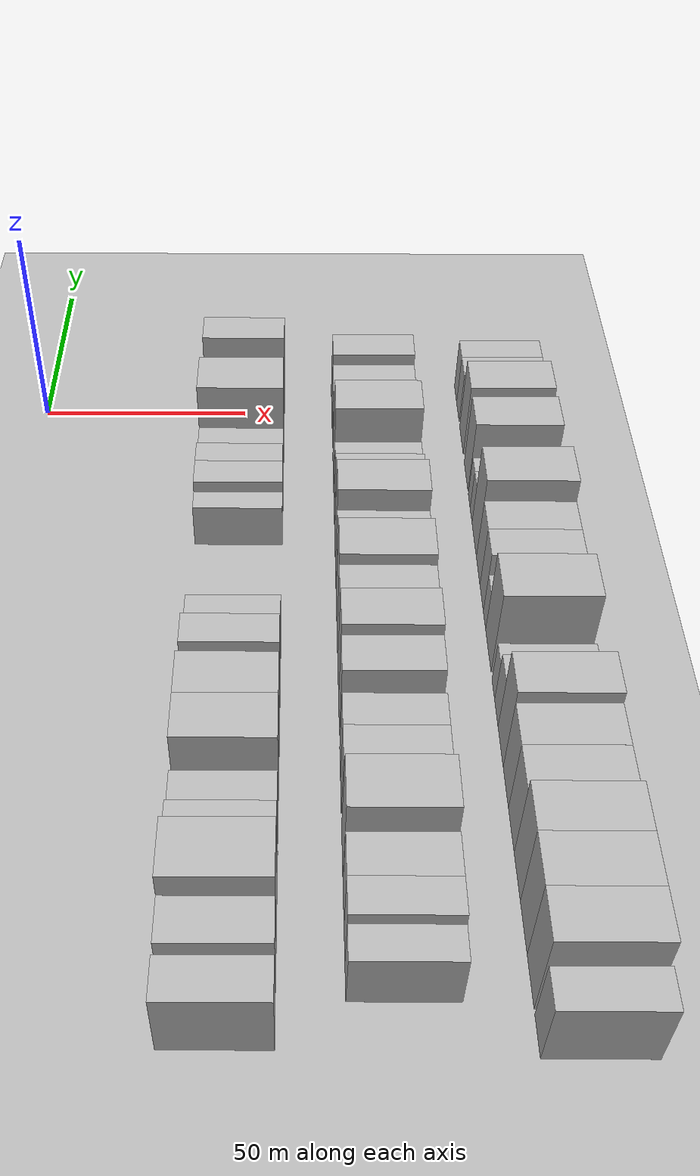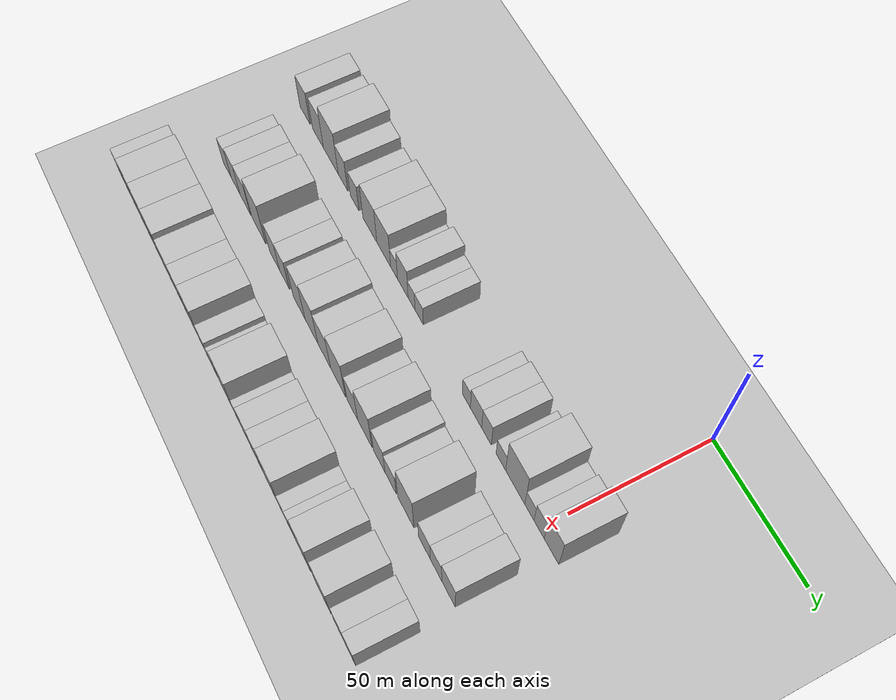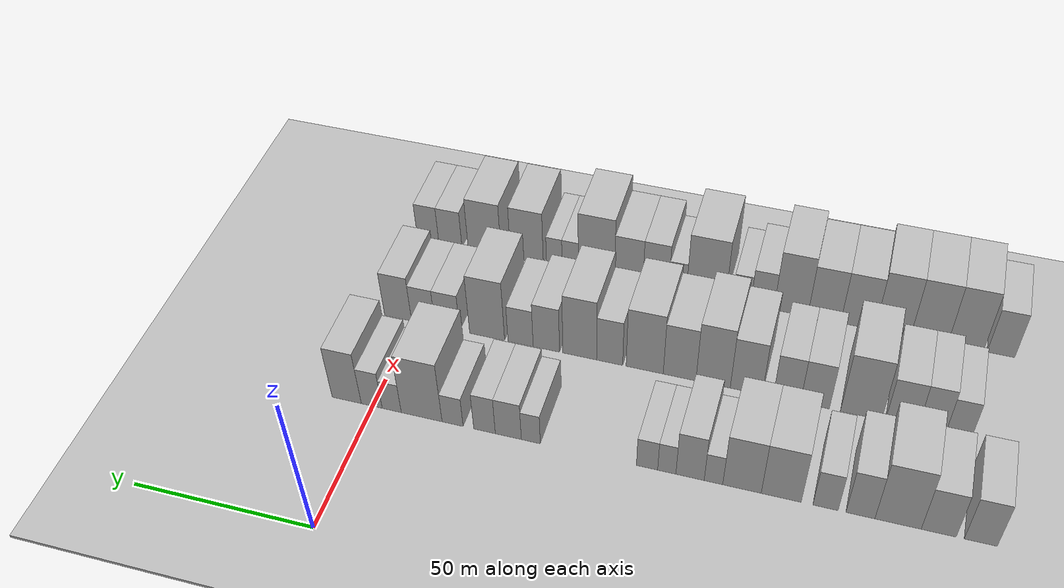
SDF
<sdf version="1.6">
 <world name="default">
  <include><name>ground_plane_1</name><uri>model://HANNAS_ground_plane</uri></include>
  <include>
   <name>ground_plane_2</name>
   <uri>model://HANNAS_ground_plane</uri>
   <pose>100 0 0  0 0 0</pose>
  </include>
  <model name="building_20">
   <static>1</static>
   <pose>50.0000 -162.3032 0 0.000000 0.000000 0.000000</pose>
   <link name="link">
    <pose>0 0 9.00 0 0 0</pose>
    <collision name="collision"><geometry><box><size>20.0000 8.0733 18.0000</size></box></geometry></collision>
    <visual name="visual">
     <cast_shadows>0</cast_shadows>
     <geometry><box><size>20.0000 8.0733 18.0000</size></box></geometry>
     <material>
      <script>
       <uri>model://HANNAS_wall/materials/scripts</uri>
       <uri>model://HANNAS_wall/materials/textures</uri>
       <name>vrc/HANNAS_wall</name>
      </script>
     </material>
    </visual>
   </link>
  </model>
  <model name="building_21">
   <static>1</static>
   <pose>50.0000 -151.9376 0 0.000000 0.000000 0.000000</pose>
   <link name="link">
    <pose>0 0 9.00 0 0 0</pose>
    <collision name="collision"><geometry><box><size>20.0000 8.6579 18.0000</size></box></geometry></collision>
    <visual name="visual">
     <cast_shadows>0</cast_shadows>
     <geometry><box><size>20.0000 8.6579 18.0000</size></box></geometry>
     <material>
      <script>
       <uri>model://HANNAS_wall/materials/scripts</uri>
       <uri>model://HANNAS_wall/materials/textures</uri>
       <name>vrc/HANNAS_wall</name>
      </script>
     </material>
    </visual>
   </link>
  </model>
  <model name="building_22">
   <static>1</static>
   <pose>50.0000 -141.8057 0 0.000000 0.000000 0.000000</pose>
   <link name="link">
    <pose>0 0 12.00 0 0 0</pose>
    <collision name="collision"><geometry><box><size>20.0000 11.6058 24.0000</size></box></geometry></collision>
    <visual name="visual">
     <cast_shadows>0</cast_shadows>
     <geometry><box><size>20.0000 11.6058 24.0000</size></box></geometry>
     <material>
      <script>
       <uri>model://HANNAS_wall/materials/scripts</uri>
       <uri>model://HANNAS_wall/materials/textures</uri>
       <name>vrc/HANNAS_wall</name>
      </script>
     </material>
    </visual>
   </link>
  </model>
  <model name="building_23">
   <static>1</static>
   <pose>50.0000 -132.3455 0 0.000000 0.000000 0.000000</pose>
   <link name="link">
    <pose>0 0 9.00 0 0 0</pose>
    <collision name="collision"><geometry><box><size>20.0000 7.3147 18.0000</size></box></geometry></collision>
    <visual name="visual">
     <cast_shadows>0</cast_shadows>
     <geometry><box><size>20.0000 7.3147 18.0000</size></box></geometry>
     <material>
      <script>
       <uri>model://HANNAS_wall/materials/scripts</uri>
       <uri>model://HANNAS_wall/materials/textures</uri>
       <name>vrc/HANNAS_wall</name>
      </script>
     </material>
    </visual>
   </link>
  </model>
  <model name="building_24">
   <static>1</static>
   <pose>50.0000 -123.4664 0 0.000000 0.000000 0.000000</pose>
   <link name="link">
    <pose>0 0 7.50 0 0 0</pose>
    <collision name="collision"><geometry><box><size>20.0000 6.4434 15.0000</size></box></geometry></collision>
    <visual name="visual">
     <cast_shadows>0</cast_shadows>
     <geometry><box><size>20.0000 6.4434 15.0000</size></box></geometry>
     <material>
      <script>
       <uri>model://HANNAS_wall/materials/scripts</uri>
       <uri>model://HANNAS_wall/materials/textures</uri>
       <name>vrc/HANNAS_wall</name>
      </script>
     </material>
    </visual>
   </link>
  </model>
  <model name="building_25">
   <static>1</static>
   <pose>50.0000 -112.0705 0 0.000000 0.000000 0.000000</pose>
   <link name="link">
    <pose>0 0 10.50 0 0 0</pose>
    <collision name="collision"><geometry><box><size>20.0000 10.3483 21.0000</size></box></geometry></collision>
    <visual name="visual">
     <cast_shadows>0</cast_shadows>
     <geometry><box><size>20.0000 10.3483 21.0000</size></box></geometry>
     <material>
      <script>
       <uri>model://HANNAS_wall/materials/scripts</uri>
       <uri>model://HANNAS_wall/materials/textures</uri>
       <name>vrc/HANNAS_wall</name>
      </script>
     </material>
    </visual>
   </link>
  </model>
  <model name="building_26">
   <static>1</static>
   <pose>50.0000 -101.8684 0 0.000000 0.000000 0.000000</pose>
   <link name="link">
    <pose>0 0 10.50 0 0 0</pose>
    <collision name="collision"><geometry><box><size>20.0000 10.0559 21.0000</size></box></geometry></collision>
    <visual name="visual">
     <cast_shadows>0</cast_shadows>
     <geometry><box><size>20.0000 10.0559 21.0000</size></box></geometry>
     <material>
      <script>
       <uri>model://HANNAS_wall/materials/scripts</uri>
       <uri>model://HANNAS_wall/materials/textures</uri>
       <name>vrc/HANNAS_wall</name>
      </script>
     </material>
    </visual>
   </link>
  </model>
  <model name="building_27">
   <static>1</static>
   <pose>50.0000 -94.3992 0 0.000000 0.000000 0.000000</pose>
   <link name="link">
    <pose>0 0 6.00 0 0 0</pose>
    <collision name="collision"><geometry><box><size>20.0000 4.8827 12.0000</size></box></geometry></collision>
    <visual name="visual">
     <cast_shadows>0</cast_shadows>
     <geometry><box><size>20.0000 4.8827 12.0000</size></box></geometry>
     <material>
      <script>
       <uri>model://HANNAS_wall/materials/scripts</uri>
       <uri>model://HANNAS_wall/materials/textures</uri>
       <name>vrc/HANNAS_wall</name>
      </script>
     </material>
    </visual>
   </link>
  </model>
  <model name="building_28">
   <static>1</static>
   <pose>50.0000 -88.1962 0 0.000000 0.000000 0.000000</pose>
   <link name="link">
    <pose>0 0 9.00 0 0 0</pose>
    <collision name="collision"><geometry><box><size>20.0000 7.5232 18.0000</size></box></geometry></collision>
    <visual name="visual">
     <cast_shadows>0</cast_shadows>
     <geometry><box><size>20.0000 7.5232 18.0000</size></box></geometry>
     <material>
      <script>
       <uri>model://HANNAS_wall/materials/scripts</uri>
       <uri>model://HANNAS_wall/materials/textures</uri>
       <name>vrc/HANNAS_wall</name>
      </script>
     </material>
    </visual>
   </link>
  </model>
  <model name="building_29">
   <static>1</static>
   <pose>50.0000 -82.0063 0 0.000000 0.000000 0.000000</pose>
   <link name="link">
    <pose>0 0 6.00 0 0 0</pose>
    <collision name="collision"><geometry><box><size>20.0000 4.8566 12.0000</size></box></geometry></collision>
    <visual name="visual">
     <cast_shadows>0</cast_shadows>
     <geometry><box><size>20.0000 4.8566 12.0000</size></box></geometry>
     <material>
      <script>
       <uri>model://HANNAS_wall/materials/scripts</uri>
       <uri>model://HANNAS_wall/materials/textures</uri>
       <name>vrc/HANNAS_wall</name>
      </script>
     </material>
    </visual>
   </link>
  </model>
  <model name="building_30">
   <static>1</static>
   <pose>50.0000 -76.7317 0 0.000000 0.000000 0.000000</pose>
   <link name="link">
    <pose>0 0 6.00 0 0 0</pose>
    <collision name="collision"><geometry><box><size>20.0000 5.6926 12.0000</size></box></geometry></collision>
    <visual name="visual">
     <cast_shadows>0</cast_shadows>
     <geometry><box><size>20.0000 5.6926 12.0000</size></box></geometry>
     <material>
      <script>
       <uri>model://HANNAS_wall/materials/scripts</uri>
       <uri>model://HANNAS_wall/materials/textures</uri>
       <name>vrc/HANNAS_wall</name>
      </script>
     </material>
    </visual>
   </link>
  </model>
  <model name="building_31">
   <static>1</static>
   <pose>50.0000 -44.9944 0 0.000000 0.000000 0.000000</pose>
   <link name="link">
    <pose>0 0 6.00 0 0 0</pose>
    <collision name="collision"><geometry><box><size>20.0000 5.2606 12.0000</size></box></geometry></collision>
    <visual name="visual">
     <cast_shadows>0</cast_shadows>
     <geometry><box><size>20.0000 5.2606 12.0000</size></box></geometry>
     <material>
      <script>
       <uri>model://HANNAS_wall/materials/scripts</uri>
       <uri>model://HANNAS_wall/materials/textures</uri>
       <name>vrc/HANNAS_wall</name>
      </script>
     </material>
    </visual>
   </link>
  </model>
  <model name="building_32">
   <static>1</static>
   <pose>50.0000 -38.7265 0 0.000000 0.000000 0.000000</pose>
   <link name="link">
    <pose>0 0 7.50 0 0 0</pose>
    <collision name="collision"><geometry><box><size>20.0000 7.2752 15.0000</size></box></geometry></collision>
    <visual name="visual">
     <cast_shadows>0</cast_shadows>
     <geometry><box><size>20.0000 7.2752 15.0000</size></box></geometry>
     <material>
      <script>
       <uri>model://HANNAS_wall/materials/scripts</uri>
       <uri>model://HANNAS_wall/materials/textures</uri>
       <name>vrc/HANNAS_wall</name>
      </script>
     </material>
    </visual>
   </link>
  </model>
  <model name="building_33">
   <static>1</static>
   <pose>50.0000 -32.0536 0 0.000000 0.000000 0.000000</pose>
   <link name="link">
    <pose>0 0 7.50 0 0 0</pose>
    <collision name="collision"><geometry><box><size>20.0000 6.0708 15.0000</size></box></geometry></collision>
    <visual name="visual">
     <cast_shadows>0</cast_shadows>
     <geometry><box><size>20.0000 6.0708 15.0000</size></box></geometry>
     <material>
      <script>
       <uri>model://HANNAS_wall/materials/scripts</uri>
       <uri>model://HANNAS_wall/materials/textures</uri>
       <name>vrc/HANNAS_wall</name>
      </script>
     </material>
    </visual>
   </link>
  </model>
  <model name="building_34">
   <static>1</static>
   <pose>50.0000 -23.0330 0 0.000000 0.000000 0.000000</pose>
   <link name="link">
    <pose>0 0 6.00 0 0 0</pose>
    <collision name="collision"><geometry><box><size>20.0000 5.9702 12.0000</size></box></geometry></collision>
    <visual name="visual">
     <cast_shadows>0</cast_shadows>
     <geometry><box><size>20.0000 5.9702 12.0000</size></box></geometry>
     <material>
      <script>
       <uri>model://HANNAS_wall/materials/scripts</uri>
       <uri>model://HANNAS_wall/materials/textures</uri>
       <name>vrc/HANNAS_wall</name>
      </script>
     </material>
    </visual>
   </link>
  </model>
  <model name="building_35">
   <static>1</static>
   <pose>50.0000 -14.2006 0 0.000000 0.000000 0.000000</pose>
   <link name="link">
    <pose>0 0 12.00 0 0 0</pose>
    <collision name="collision"><geometry><box><size>20.0000 11.6945 24.0000</size></box></geometry></collision>
    <visual name="visual">
     <cast_shadows>0</cast_shadows>
     <geometry><box><size>20.0000 11.6945 24.0000</size></box></geometry>
     <material>
      <script>
       <uri>model://HANNAS_wall/materials/scripts</uri>
       <uri>model://HANNAS_wall/materials/textures</uri>
       <name>vrc/HANNAS_wall</name>
      </script>
     </material>
    </visual>
   </link>
  </model>
  <model name="building_36">
   <static>1</static>
   <pose>50.0000 -5.5982 0 0.000000 0.000000 0.000000</pose>
   <link name="link">
    <pose>0 0 6.00 0 0 0</pose>
    <collision name="collision"><geometry><box><size>20.0000 5.5104 12.0000</size></box></geometry></collision>
    <visual name="visual">
     <cast_shadows>0</cast_shadows>
     <geometry><box><size>20.0000 5.5104 12.0000</size></box></geometry>
     <material>
      <script>
       <uri>model://HANNAS_wall/materials/scripts</uri>
       <uri>model://HANNAS_wall/materials/textures</uri>
       <name>vrc/HANNAS_wall</name>
      </script>
     </material>
    </visual>
   </link>
  </model>
  <model name="building_37">
   <static>1</static>
   <pose>50.0000 0.1944 0 0.000000 0.000000 0.000000</pose>
   <link name="link">
    <pose>0 0 7.50 0 0 0</pose>
    <collision name="collision"><geometry><box><size>20.0000 6.0749 15.0000</size></box></geometry></collision>
    <visual name="visual">
     <cast_shadows>0</cast_shadows>
     <geometry><box><size>20.0000 6.0749 15.0000</size></box></geometry>
     <material>
      <script>
       <uri>model://HANNAS_wall/materials/scripts</uri>
       <uri>model://HANNAS_wall/materials/textures</uri>
       <name>vrc/HANNAS_wall</name>
      </script>
     </material>
    </visual>
   </link>
  </model>
  <model name="building_38">
   <static>1</static>
   <pose>50.0000 7.5005 0 0.000000 0.000000 0.000000</pose>
   <link name="link">
    <pose>0 0 10.50 0 0 0</pose>
    <collision name="collision"><geometry><box><size>20.0000 8.5372 21.0000</size></box></geometry></collision>
    <visual name="visual">
     <cast_shadows>0</cast_shadows>
     <geometry><box><size>20.0000 8.5372 21.0000</size></box></geometry>
     <material>
      <script>
       <uri>model://HANNAS_wall/materials/scripts</uri>
       <uri>model://HANNAS_wall/materials/textures</uri>
       <name>vrc/HANNAS_wall</name>
      </script>
     </material>
    </visual>
   </link>
  </model>
  <model name="building_93">
   <static>1</static>
   <pose>82.0000 -154.3610 0 0.000000 0.000000 0.000000</pose>
   <link name="link">
    <pose>0 0 7.50 0 0 0</pose>
    <collision name="collision"><geometry><box><size>20.0000 6.7624 15.0000</size></box></geometry></collision>
    <visual name="visual">
     <cast_shadows>0</cast_shadows>
     <geometry><box><size>20.0000 6.7624 15.0000</size></box></geometry>
     <material>
      <script>
       <uri>model://HANNAS_wall/materials/scripts</uri>
       <uri>model://HANNAS_wall/materials/textures</uri>
       <name>vrc/HANNAS_wall</name>
      </script>
     </material>
    </visual>
   </link>
  </model>
  <model name="building_94">
   <static>1</static>
   <pose>82.0000 -147.3197 0 0.000000 0.000000 0.000000</pose>
   <link name="link">
    <pose>0 0 9.00 0 0 0</pose>
    <collision name="collision"><geometry><box><size>20.0000 7.3201 18.0000</size></box></geometry></collision>
    <visual name="visual">
     <cast_shadows>0</cast_shadows>
     <geometry><box><size>20.0000 7.3201 18.0000</size></box></geometry>
     <material>
      <script>
       <uri>model://HANNAS_wall/materials/scripts</uri>
       <uri>model://HANNAS_wall/materials/textures</uri>
       <name>vrc/HANNAS_wall</name>
      </script>
     </material>
    </visual>
   </link>
  </model>
  <model name="building_95">
   <static>1</static>
   <pose>82.0000 -139.3300 0 0.000000 0.000000 0.000000</pose>
   <link name="link">
    <pose>0 0 9.00 0 0 0</pose>
    <collision name="collision"><geometry><box><size>20.0000 8.6593 18.0000</size></box></geometry></collision>
    <visual name="visual">
     <cast_shadows>0</cast_shadows>
     <geometry><box><size>20.0000 8.6593 18.0000</size></box></geometry>
     <material>
      <script>
       <uri>model://HANNAS_wall/materials/scripts</uri>
       <uri>model://HANNAS_wall/materials/textures</uri>
       <name>vrc/HANNAS_wall</name>
      </script>
     </material>
    </visual>
   </link>
  </model>
  <model name="building_96">
   <static>1</static>
   <pose>82.0000 -128.4427 0 0.000000 0.000000 0.000000</pose>
   <link name="link">
    <pose>0 0 12.00 0 0 0</pose>
    <collision name="collision"><geometry><box><size>20.0000 11.1153 24.0000</size></box></geometry></collision>
    <visual name="visual">
     <cast_shadows>0</cast_shadows>
     <geometry><box><size>20.0000 11.1153 24.0000</size></box></geometry>
     <material>
      <script>
       <uri>model://HANNAS_wall/materials/scripts</uri>
       <uri>model://HANNAS_wall/materials/textures</uri>
       <name>vrc/HANNAS_wall</name>
      </script>
     </material>
    </visual>
   </link>
  </model>
  <model name="building_97">
   <static>1</static>
   <pose>82.0000 -115.9267 0 0.000000 0.000000 0.000000</pose>
   <link name="link">
    <pose>0 0 9.00 0 0 0</pose>
    <collision name="collision"><geometry><box><size>20.0000 7.9168 18.0000</size></box></geometry></collision>
    <visual name="visual">
     <cast_shadows>0</cast_shadows>
     <geometry><box><size>20.0000 7.9168 18.0000</size></box></geometry>
     <material>
      <script>
       <uri>model://HANNAS_wall/materials/scripts</uri>
       <uri>model://HANNAS_wall/materials/textures</uri>
       <name>vrc/HANNAS_wall</name>
      </script>
     </material>
    </visual>
   </link>
  </model>
  <model name="building_98">
   <static>1</static>
   <pose>82.0000 -108.2149 0 0.000000 0.000000 0.000000</pose>
   <link name="link">
    <pose>0 0 9.00 0 0 0</pose>
    <collision name="collision"><geometry><box><size>20.0000 7.5067 18.0000</size></box></geometry></collision>
    <visual name="visual">
     <cast_shadows>0</cast_shadows>
     <geometry><box><size>20.0000 7.5067 18.0000</size></box></geometry>
     <material>
      <script>
       <uri>model://HANNAS_wall/materials/scripts</uri>
       <uri>model://HANNAS_wall/materials/textures</uri>
       <name>vrc/HANNAS_wall</name>
      </script>
     </material>
    </visual>
   </link>
  </model>
  <model name="building_99">
   <static>1</static>
   <pose>82.0000 -97.0016 0 0.000000 0.000000 0.000000</pose>
   <link name="link">
    <pose>0 0 10.50 0 0 0</pose>
    <collision name="collision"><geometry><box><size>20.0000 8.9200 21.0000</size></box></geometry></collision>
    <visual name="visual">
     <cast_shadows>0</cast_shadows>
     <geometry><box><size>20.0000 8.9200 21.0000</size></box></geometry>
     <material>
      <script>
       <uri>model://HANNAS_wall/materials/scripts</uri>
       <uri>model://HANNAS_wall/materials/textures</uri>
       <name>vrc/HANNAS_wall</name>
      </script>
     </material>
    </visual>
   </link>
  </model>
  <model name="building_100">
   <static>1</static>
   <pose>82.0000 -87.7204 0 0.000000 0.000000 0.000000</pose>
   <link name="link">
    <pose>0 0 12.00 0 0 0</pose>
    <collision name="collision"><geometry><box><size>20.0000 9.6425 24.0000</size></box></geometry></collision>
    <visual name="visual">
     <cast_shadows>0</cast_shadows>
     <geometry><box><size>20.0000 9.6425 24.0000</size></box></geometry>
     <material>
      <script>
       <uri>model://HANNAS_wall/materials/scripts</uri>
       <uri>model://HANNAS_wall/materials/textures</uri>
       <name>vrc/HANNAS_wall</name>
      </script>
     </material>
    </visual>
   </link>
  </model>
  <model name="building_101">
   <static>1</static>
   <pose>82.0000 -78.2723 0 0.000000 0.000000 0.000000</pose>
   <link name="link">
    <pose>0 0 10.50 0 0 0</pose>
    <collision name="collision"><geometry><box><size>20.0000 9.2538 21.0000</size></box></geometry></collision>
    <visual name="visual">
     <cast_shadows>0</cast_shadows>
     <geometry><box><size>20.0000 9.2538 21.0000</size></box></geometry>
     <material>
      <script>
       <uri>model://HANNAS_wall/materials/scripts</uri>
       <uri>model://HANNAS_wall/materials/textures</uri>
       <name>vrc/HANNAS_wall</name>
      </script>
     </material>
    </visual>
   </link>
  </model>
  <model name="building_102">
   <static>1</static>
   <pose>82.0000 -68.3333 0 0.000000 0.000000 0.000000</pose>
   <link name="link">
    <pose>0 0 12.00 0 0 0</pose>
    <collision name="collision"><geometry><box><size>20.0000 10.6241 24.0000</size></box></geometry></collision>
    <visual name="visual">
     <cast_shadows>0</cast_shadows>
     <geometry><box><size>20.0000 10.6241 24.0000</size></box></geometry>
     <material>
      <script>
       <uri>model://HANNAS_wall/materials/scripts</uri>
       <uri>model://HANNAS_wall/materials/textures</uri>
       <name>vrc/HANNAS_wall</name>
      </script>
     </material>
    </visual>
   </link>
  </model>
  <model name="building_103">
   <static>1</static>
   <pose>82.0000 -58.2504 0 0.000000 0.000000 0.000000</pose>
   <link name="link">
    <pose>0 0 9.00 0 0 0</pose>
    <collision name="collision"><geometry><box><size>20.0000 7.5419 18.0000</size></box></geometry></collision>
    <visual name="visual">
     <cast_shadows>0</cast_shadows>
     <geometry><box><size>20.0000 7.5419 18.0000</size></box></geometry>
     <material>
      <script>
       <uri>model://HANNAS_wall/materials/scripts</uri>
       <uri>model://HANNAS_wall/materials/textures</uri>
       <name>vrc/HANNAS_wall</name>
      </script>
     </material>
    </visual>
   </link>
  </model>
  <model name="building_104">
   <static>1</static>
   <pose>82.0000 -49.5698 0 0.000000 0.000000 0.000000</pose>
   <link name="link">
    <pose>0 0 12.00 0 0 0</pose>
    <collision name="collision"><geometry><box><size>20.0000 9.8192 24.0000</size></box></geometry></collision>
    <visual name="visual">
     <cast_shadows>0</cast_shadows>
     <geometry><box><size>20.0000 9.8192 24.0000</size></box></geometry>
     <material>
      <script>
       <uri>model://HANNAS_wall/materials/scripts</uri>
       <uri>model://HANNAS_wall/materials/textures</uri>
       <name>vrc/HANNAS_wall</name>
      </script>
     </material>
    </visual>
   </link>
  </model>
  <model name="building_105">
   <static>1</static>
   <pose>82.0000 -39.7836 0 0.000000 0.000000 0.000000</pose>
   <link name="link">
    <pose>0 0 9.00 0 0 0</pose>
    <collision name="collision"><geometry><box><size>20.0000 7.7533 18.0000</size></box></geometry></collision>
    <visual name="visual">
     <cast_shadows>0</cast_shadows>
     <geometry><box><size>20.0000 7.7533 18.0000</size></box></geometry>
     <material>
      <script>
       <uri>model://HANNAS_wall/materials/scripts</uri>
       <uri>model://HANNAS_wall/materials/textures</uri>
       <name>vrc/HANNAS_wall</name>
      </script>
     </material>
    </visual>
   </link>
  </model>
  <model name="building_106">
   <static>1</static>
   <pose>82.0000 -32.1772 0 0.000000 0.000000 0.000000</pose>
   <link name="link">
    <pose>0 0 7.50 0 0 0</pose>
    <collision name="collision"><geometry><box><size>20.0000 7.4594 15.0000</size></box></geometry></collision>
    <visual name="visual">
     <cast_shadows>0</cast_shadows>
     <geometry><box><size>20.0000 7.4594 15.0000</size></box></geometry>
     <material>
      <script>
       <uri>model://HANNAS_wall/materials/scripts</uri>
       <uri>model://HANNAS_wall/materials/textures</uri>
       <name>vrc/HANNAS_wall</name>
      </script>
     </material>
    </visual>
   </link>
  </model>
  <model name="building_107">
   <static>1</static>
   <pose>82.0000 -22.2147 0 0.000000 0.000000 0.000000</pose>
   <link name="link">
    <pose>0 0 12.00 0 0 0</pose>
    <collision name="collision"><geometry><box><size>20.0000 10.4657 24.0000</size></box></geometry></collision>
    <visual name="visual">
     <cast_shadows>0</cast_shadows>
     <geometry><box><size>20.0000 10.4657 24.0000</size></box></geometry>
     <material>
      <script>
       <uri>model://HANNAS_wall/materials/scripts</uri>
       <uri>model://HANNAS_wall/materials/textures</uri>
       <name>vrc/HANNAS_wall</name>
      </script>
     </material>
    </visual>
   </link>
  </model>
  <model name="building_108">
   <static>1</static>
   <pose>82.0000 -10.2389 0 0.000000 0.000000 0.000000</pose>
   <link name="link">
    <pose>0 0 7.50 0 0 0</pose>
    <collision name="collision"><geometry><box><size>20.0000 7.4857 15.0000</size></box></geometry></collision>
    <visual name="visual">
     <cast_shadows>0</cast_shadows>
     <geometry><box><size>20.0000 7.4857 15.0000</size></box></geometry>
     <material>
      <script>
       <uri>model://HANNAS_wall/materials/scripts</uri>
       <uri>model://HANNAS_wall/materials/textures</uri>
       <name>vrc/HANNAS_wall</name>
      </script>
     </material>
    </visual>
   </link>
  </model>
  <model name="building_109">
   <static>1</static>
   <pose>82.0000 -2.9198 0 0.000000 0.000000 0.000000</pose>
   <link name="link">
    <pose>0 0 7.50 0 0 0</pose>
    <collision name="collision"><geometry><box><size>20.0000 7.1526 15.0000</size></box></geometry></collision>
    <visual name="visual">
     <cast_shadows>0</cast_shadows>
     <geometry><box><size>20.0000 7.1526 15.0000</size></box></geometry>
     <material>
      <script>
       <uri>model://HANNAS_wall/materials/scripts</uri>
       <uri>model://HANNAS_wall/materials/textures</uri>
       <name>vrc/HANNAS_wall</name>
      </script>
     </material>
    </visual>
   </link>
  </model>
  <model name="building_110">
   <static>1</static>
   <pose>82.0000 4.7956 0 0.000000 0.000000 0.000000</pose>
   <link name="link">
    <pose>0 0 9.00 0 0 0</pose>
    <collision name="collision"><geometry><box><size>20.0000 8.2781 18.0000</size></box></geometry></collision>
    <visual name="visual">
     <cast_shadows>0</cast_shadows>
     <geometry><box><size>20.0000 8.2781 18.0000</size></box></geometry>
     <material>
      <script>
       <uri>model://HANNAS_wall/materials/scripts</uri>
       <uri>model://HANNAS_wall/materials/textures</uri>
       <name>vrc/HANNAS_wall</name>
      </script>
     </material>
    </visual>
   </link>
  </model>
  <model name="building_171">
   <static>1</static>
   <pose>114.0000 -163.6766 0 0.000000 0.000000 0.000000</pose>
   <link name="link">
    <pose>0 0 9.00 0 0 0</pose>
    <collision name="collision"><geometry><box><size>20.0000 7.6317 18.0000</size></box></geometry></collision>
    <visual name="visual">
     <cast_shadows>0</cast_shadows>
     <geometry><box><size>20.0000 7.6317 18.0000</size></box></geometry>
     <material>
      <script>
       <uri>model://HANNAS_wall/materials/scripts</uri>
       <uri>model://HANNAS_wall/materials/textures</uri>
       <name>vrc/HANNAS_wall</name>
      </script>
     </material>
    </visual>
   </link>
  </model>
  <model name="building_172">
   <static>1</static>
   <pose>114.0000 -153.8746 0 0.000000 0.000000 0.000000</pose>
   <link name="link">
    <pose>0 0 12.00 0 0 0</pose>
    <collision name="collision"><geometry><box><size>20.0000 9.9723 24.0000</size></box></geometry></collision>
    <visual name="visual">
     <cast_shadows>0</cast_shadows>
     <geometry><box><size>20.0000 9.9723 24.0000</size></box></geometry>
     <material>
      <script>
       <uri>model://HANNAS_wall/materials/scripts</uri>
       <uri>model://HANNAS_wall/materials/textures</uri>
       <name>vrc/HANNAS_wall</name>
      </script>
     </material>
    </visual>
   </link>
  </model>
  <model name="building_173">
   <static>1</static>
   <pose>114.0000 -143.6746 0 0.000000 0.000000 0.000000</pose>
   <link name="link">
    <pose>0 0 12.00 0 0 0</pose>
    <collision name="collision"><geometry><box><size>20.0000 10.4278 24.0000</size></box></geometry></collision>
    <visual name="visual">
     <cast_shadows>0</cast_shadows>
     <geometry><box><size>20.0000 10.4278 24.0000</size></box></geometry>
     <material>
      <script>
       <uri>model://HANNAS_wall/materials/scripts</uri>
       <uri>model://HANNAS_wall/materials/textures</uri>
       <name>vrc/HANNAS_wall</name>
      </script>
     </material>
    </visual>
   </link>
  </model>
  <model name="building_174">
   <static>1</static>
   <pose>114.0000 -133.4131 0 0.000000 0.000000 0.000000</pose>
   <link name="link">
    <pose>0 0 12.00 0 0 0</pose>
    <collision name="collision"><geometry><box><size>20.0000 10.0951 24.0000</size></box></geometry></collision>
    <visual name="visual">
     <cast_shadows>0</cast_shadows>
     <geometry><box><size>20.0000 10.0951 24.0000</size></box></geometry>
     <material>
      <script>
       <uri>model://HANNAS_wall/materials/scripts</uri>
       <uri>model://HANNAS_wall/materials/textures</uri>
       <name>vrc/HANNAS_wall</name>
      </script>
     </material>
    </visual>
   </link>
  </model>
  <model name="building_175">
   <static>1</static>
   <pose>114.0000 -123.4525 0 0.000000 0.000000 0.000000</pose>
   <link name="link">
    <pose>0 0 10.50 0 0 0</pose>
    <collision name="collision"><geometry><box><size>20.0000 9.8262 21.0000</size></box></geometry></collision>
    <visual name="visual">
     <cast_shadows>0</cast_shadows>
     <geometry><box><size>20.0000 9.8262 21.0000</size></box></geometry>
     <material>
      <script>
       <uri>model://HANNAS_wall/materials/scripts</uri>
       <uri>model://HANNAS_wall/materials/textures</uri>
       <name>vrc/HANNAS_wall</name>
      </script>
     </material>
    </visual>
   </link>
  </model>
  <model name="building_176">
   <static>1</static>
   <pose>114.0000 -113.7834 0 0.000000 0.000000 0.000000</pose>
   <link name="link">
    <pose>0 0 10.50 0 0 0</pose>
    <collision name="collision"><geometry><box><size>20.0000 9.5119 21.0000</size></box></geometry></collision>
    <visual name="visual">
     <cast_shadows>0</cast_shadows>
     <geometry><box><size>20.0000 9.5119 21.0000</size></box></geometry>
     <material>
      <script>
       <uri>model://HANNAS_wall/materials/scripts</uri>
       <uri>model://HANNAS_wall/materials/textures</uri>
       <name>vrc/HANNAS_wall</name>
      </script>
     </material>
    </visual>
   </link>
  </model>
  <model name="building_177">
   <static>1</static>
   <pose>114.0000 -104.0914 0 0.000000 0.000000 0.000000</pose>
   <link name="link">
    <pose>0 0 12.00 0 0 0</pose>
    <collision name="collision"><geometry><box><size>20.0000 9.8721 24.0000</size></box></geometry></collision>
    <visual name="visual">
     <cast_shadows>0</cast_shadows>
     <geometry><box><size>20.0000 9.8721 24.0000</size></box></geometry>
     <material>
      <script>
       <uri>model://HANNAS_wall/materials/scripts</uri>
       <uri>model://HANNAS_wall/materials/textures</uri>
       <name>vrc/HANNAS_wall</name>
      </script>
     </material>
    </visual>
   </link>
  </model>
  <model name="building_178">
   <static>1</static>
   <pose>114.0000 -95.7328 0 0.000000 0.000000 0.000000</pose>
   <link name="link">
    <pose>0 0 7.50 0 0 0</pose>
    <collision name="collision"><geometry><box><size>20.0000 6.8453 15.0000</size></box></geometry></collision>
    <visual name="visual">
     <cast_shadows>0</cast_shadows>
     <geometry><box><size>20.0000 6.8453 15.0000</size></box></geometry>
     <material>
      <script>
       <uri>model://HANNAS_wall/materials/scripts</uri>
       <uri>model://HANNAS_wall/materials/textures</uri>
       <name>vrc/HANNAS_wall</name>
      </script>
     </material>
    </visual>
   </link>
  </model>
  <model name="building_179">
   <static>1</static>
   <pose>114.0000 -89.6214 0 0.000000 0.000000 0.000000</pose>
   <link name="link">
    <pose>0 0 6.00 0 0 0</pose>
    <collision name="collision"><geometry><box><size>20.0000 5.3775 12.0000</size></box></geometry></collision>
    <visual name="visual">
     <cast_shadows>0</cast_shadows>
     <geometry><box><size>20.0000 5.3775 12.0000</size></box></geometry>
     <material>
      <script>
       <uri>model://HANNAS_wall/materials/scripts</uri>
       <uri>model://HANNAS_wall/materials/textures</uri>
       <name>vrc/HANNAS_wall</name>
      </script>
     </material>
    </visual>
   </link>
  </model>
  <model name="building_180">
   <static>1</static>
   <pose>114.0000 -79.0637 0 0.000000 0.000000 0.000000</pose>
   <link name="link">
    <pose>0 0 12.00 0 0 0</pose>
    <collision name="collision"><geometry><box><size>20.0000 11.7379 24.0000</size></box></geometry></collision>
    <visual name="visual">
     <cast_shadows>0</cast_shadows>
     <geometry><box><size>20.0000 11.7379 24.0000</size></box></geometry>
     <material>
      <script>
       <uri>model://HANNAS_wall/materials/scripts</uri>
       <uri>model://HANNAS_wall/materials/textures</uri>
       <name>vrc/HANNAS_wall</name>
      </script>
     </material>
    </visual>
   </link>
  </model>
  <model name="building_181">
   <static>1</static>
   <pose>114.0000 -70.5569 0 0.000000 0.000000 0.000000</pose>
   <link name="link">
    <pose>0 0 6.00 0 0 0</pose>
    <collision name="collision"><geometry><box><size>20.0000 5.2757 12.0000</size></box></geometry></collision>
    <visual name="visual">
     <cast_shadows>0</cast_shadows>
     <geometry><box><size>20.0000 5.2757 12.0000</size></box></geometry>
     <material>
      <script>
       <uri>model://HANNAS_wall/materials/scripts</uri>
       <uri>model://HANNAS_wall/materials/textures</uri>
       <name>vrc/HANNAS_wall</name>
      </script>
     </material>
    </visual>
   </link>
  </model>
  <model name="building_182">
   <static>1</static>
   <pose>114.0000 -63.9984 0 0.000000 0.000000 0.000000</pose>
   <link name="link">
    <pose>0 0 9.00 0 0 0</pose>
    <collision name="collision"><geometry><box><size>20.0000 7.8411 18.0000</size></box></geometry></collision>
    <visual name="visual">
     <cast_shadows>0</cast_shadows>
     <geometry><box><size>20.0000 7.8411 18.0000</size></box></geometry>
     <material>
      <script>
       <uri>model://HANNAS_wall/materials/scripts</uri>
       <uri>model://HANNAS_wall/materials/textures</uri>
       <name>vrc/HANNAS_wall</name>
      </script>
     </material>
    </visual>
   </link>
  </model>
  <model name="building_183">
   <static>1</static>
   <pose>114.0000 -55.7418 0 0.000000 0.000000 0.000000</pose>
   <link name="link">
    <pose>0 0 9.00 0 0 0</pose>
    <collision name="collision"><geometry><box><size>20.0000 8.6722 18.0000</size></box></geometry></collision>
    <visual name="visual">
     <cast_shadows>0</cast_shadows>
     <geometry><box><size>20.0000 8.6722 18.0000</size></box></geometry>
     <material>
      <script>
       <uri>model://HANNAS_wall/materials/scripts</uri>
       <uri>model://HANNAS_wall/materials/textures</uri>
       <name>vrc/HANNAS_wall</name>
      </script>
     </material>
    </visual>
   </link>
  </model>
  <model name="building_184">
   <static>1</static>
   <pose>114.0000 -45.8225 0 0.000000 0.000000 0.000000</pose>
   <link name="link">
    <pose>0 0 12.00 0 0 0</pose>
    <collision name="collision"><geometry><box><size>20.0000 11.1664 24.0000</size></box></geometry></collision>
    <visual name="visual">
     <cast_shadows>0</cast_shadows>
     <geometry><box><size>20.0000 11.1664 24.0000</size></box></geometry>
     <material>
      <script>
       <uri>model://HANNAS_wall/materials/scripts</uri>
       <uri>model://HANNAS_wall/materials/textures</uri>
       <name>vrc/HANNAS_wall</name>
      </script>
     </material>
    </visual>
   </link>
  </model>
  <model name="building_185">
   <static>1</static>
   <pose>114.0000 -37.7198 0 0.000000 0.000000 0.000000</pose>
   <link name="link">
    <pose>0 0 6.00 0 0 0</pose>
    <collision name="collision"><geometry><box><size>20.0000 5.0389 12.0000</size></box></geometry></collision>
    <visual name="visual">
     <cast_shadows>0</cast_shadows>
     <geometry><box><size>20.0000 5.0389 12.0000</size></box></geometry>
     <material>
      <script>
       <uri>model://HANNAS_wall/materials/scripts</uri>
       <uri>model://HANNAS_wall/materials/textures</uri>
       <name>vrc/HANNAS_wall</name>
      </script>
     </material>
    </visual>
   </link>
  </model>
  <model name="building_186">
   <static>1</static>
   <pose>114.0000 -32.7788 0 0.000000 0.000000 0.000000</pose>
   <link name="link">
    <pose>0 0 6.00 0 0 0</pose>
    <collision name="collision"><geometry><box><size>20.0000 4.8432 12.0000</size></box></geometry></collision>
    <visual name="visual">
     <cast_shadows>0</cast_shadows>
     <geometry><box><size>20.0000 4.8432 12.0000</size></box></geometry>
     <material>
      <script>
       <uri>model://HANNAS_wall/materials/scripts</uri>
       <uri>model://HANNAS_wall/materials/textures</uri>
       <name>vrc/HANNAS_wall</name>
      </script>
     </material>
    </visual>
   </link>
  </model>
  <model name="building_187">
   <static>1</static>
   <pose>114.0000 -24.2140 0 0.000000 0.000000 0.000000</pose>
   <link name="link">
    <pose>0 0 10.50 0 0 0</pose>
    <collision name="collision"><geometry><box><size>20.0000 10.2865 21.0000</size></box></geometry></collision>
    <visual name="visual">
     <cast_shadows>0</cast_shadows>
     <geometry><box><size>20.0000 10.2865 21.0000</size></box></geometry>
     <material>
      <script>
       <uri>model://HANNAS_wall/materials/scripts</uri>
       <uri>model://HANNAS_wall/materials/textures</uri>
       <name>vrc/HANNAS_wall</name>
      </script>
     </material>
    </visual>
   </link>
  </model>
  <model name="building_188">
   <static>1</static>
   <pose>114.0000 -10.8435 0 0.000000 0.000000 0.000000</pose>
   <link name="link">
    <pose>0 0 10.50 0 0 0</pose>
    <collision name="collision"><geometry><box><size>20.0000 10.4544 21.0000</size></box></geometry></collision>
    <visual name="visual">
     <cast_shadows>0</cast_shadows>
     <geometry><box><size>20.0000 10.4544 21.0000</size></box></geometry>
     <material>
      <script>
       <uri>model://HANNAS_wall/materials/scripts</uri>
       <uri>model://HANNAS_wall/materials/textures</uri>
       <name>vrc/HANNAS_wall</name>
      </script>
     </material>
    </visual>
   </link>
  </model>
  <model name="building_189">
   <static>1</static>
   <pose>114.0000 0.0944 0 0.000000 0.000000 0.000000</pose>
   <link name="link">
    <pose>0 0 7.50 0 0 0</pose>
    <collision name="collision"><geometry><box><size>20.0000 7.4214 15.0000</size></box></geometry></collision>
    <visual name="visual">
     <cast_shadows>0</cast_shadows>
     <geometry><box><size>20.0000 7.4214 15.0000</size></box></geometry>
     <material>
      <script>
       <uri>model://HANNAS_wall/materials/scripts</uri>
       <uri>model://HANNAS_wall/materials/textures</uri>
       <name>vrc/HANNAS_wall</name>
      </script>
     </material>
    </visual>
   </link>
  </model>
  <model name="building_190">
   <static>1</static>
   <pose>114.0000 7.2378 0 0.000000 0.000000 0.000000</pose>
   <link name="link">
    <pose>0 0 7.50 0 0 0</pose>
    <collision name="collision"><geometry><box><size>20.0000 6.8655 15.0000</size></box></geometry></collision>
    <visual name="visual">
     <cast_shadows>0</cast_shadows>
     <geometry><box><size>20.0000 6.8655 15.0000</size></box></geometry>
     <material>
      <script>
       <uri>model://HANNAS_wall/materials/scripts</uri>
       <uri>model://HANNAS_wall/materials/textures</uri>
       <name>vrc/HANNAS_wall</name>
      </script>
     </material>
    </visual>
   </link>
  </model>
 </world>
</sdf>
